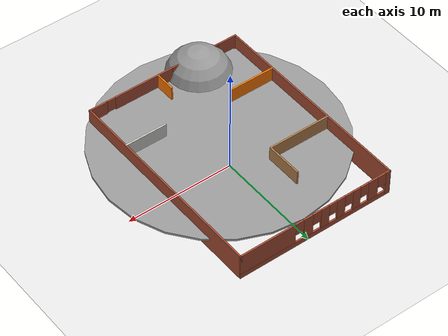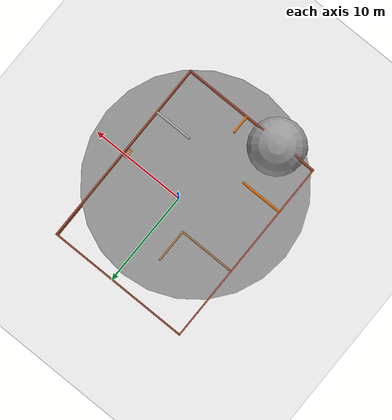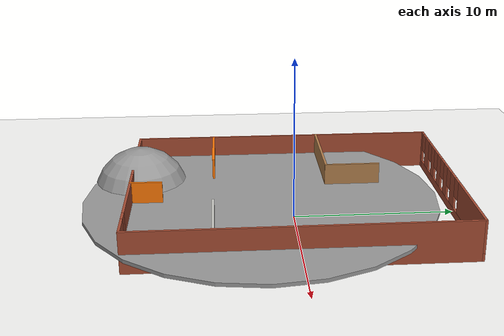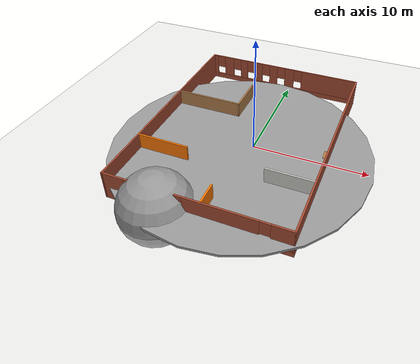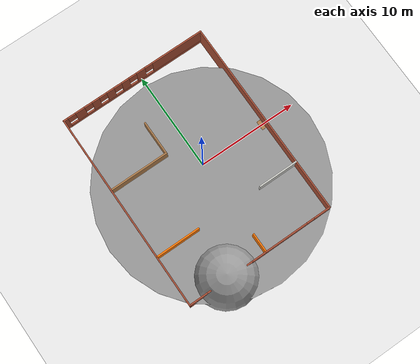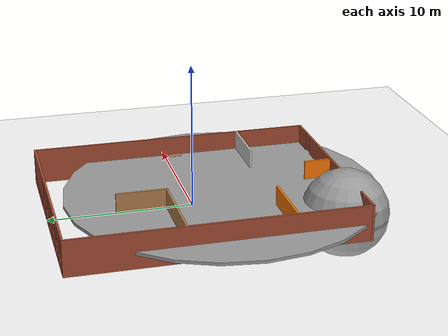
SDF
<sdf version="1.6">
 <world name="default">
  <model name="ground_plane">
   <static>1</static>
   <link name="link">
    <collision name="collision">
     <geometry><plane><normal>0 0 1</normal><size>100 100</size></plane></geometry>
     <surface>
      <contact><collide_bitmask>65535</collide_bitmask></contact>
      <friction><ode><mu>100</mu><mu2>50</mu2></ode></friction>
     </surface>
    </collision>
    <visual name="visual">
     <cast_shadows>0</cast_shadows>
     <geometry><plane><normal>0 0 1</normal><size>100 100</size></plane></geometry>
     <material>
      <script><uri>file://media/materials/scripts/gazebo.material</uri><name>Gazebo/Grey</name></script>
     </material>
    </visual>
   </link>
  </model>
  <model name="Apartment">
   <pose>-0.78403 0.000494 0 0 -0 0</pose>
   <link name="Wall_0">
    <collision name="Wall_0_Collision">
     <geometry><box><size>20 0.15 2.5</size></box></geometry>
     <pose>0 0 1.25 0 -0 0</pose>
    </collision>
    <visual name="Wall_0_Visual">
     <pose>0 0 1.25 0 -0 0</pose>
     <geometry><box><size>20 0.15 2.5</size></box></geometry>
     <material>
      <script><uri>file://media/materials/scripts/gazebo.material</uri><name>Gazebo/Bricks</name></script>
      <ambient>0.921569 0.807843 0.615686 1</ambient>
     </material>
     <meta><layer>0</layer></meta>
    </visual>
    <pose>-7.42433 0 0 0 -0 1.57073</pose>
   </link>
   <link name="Wall_22">
    <collision name="Wall_22_Collision">
     <geometry><box><size>4 0.15 2.5</size></box></geometry>
     <pose>0 0 1.25 0 -0 0</pose>
    </collision>
    <visual name="Wall_22_Visual">
     <pose>0 0 1.25 0 -0 0</pose>
     <geometry><box><size>4 0.15 2.5</size></box></geometry>
     <material>
      <script><uri>file://media/materials/scripts/gazebo.material</uri><name>Gazebo/CeilingTiled</name></script>
      <ambient>1 1 1 1</ambient>
     </material>
     <meta><layer>0</layer></meta>
    </visual>
    <pose>5.47445 -4.93437 0 0 -0 3.14159</pose>
   </link>
   <link name="Wall_24">
    <collision name="Wall_24_Collision">
     <geometry><box><size>2 0.15 2.5</size></box></geometry>
     <pose>0 0 1.25 0 -0 0</pose>
    </collision>
    <visual name="Wall_24_Visual">
     <pose>0 0 1.25 0 -0 0</pose>
     <geometry><box><size>2 0.15 2.5</size></box></geometry>
     <material>
      <script><uri>file://media/materials/scripts/gazebo.material</uri><name>Gazebo/Grey</name></script>
      <ambient>0.996078 0.47451 0.0196078 1</ambient>
     </material>
     <meta><layer>0</layer></meta>
    </visual>
    <pose>0.601066 -8.99753 0 0 -0 1.5708</pose>
   </link>
   <link name="Wall_26">
    <collision name="Wall_26_Collision">
     <geometry><box><size>4.5 0.15 2.5</size></box></geometry>
     <pose>0 0 1.25 0 -0 0</pose>
    </collision>
    <visual name="Wall_26_Visual">
     <pose>0 0 1.25 0 -0 0</pose>
     <geometry><box><size>4.5 0.15 2.5</size></box></geometry>
     <material>
      <script><uri>file://media/materials/scripts/gazebo.material</uri><name>Gazebo/Grey</name></script>
      <ambient>0.996078 0.47451 0.0196078 1</ambient>
     </material>
     <meta><layer>0</layer></meta>
    </visual>
    <pose>-5.22914 -4.89414 0 0 -0 0</pose>
   </link>
   <link name="Wall_29">
    <collision name="Wall_29_Collision">
     <geometry><box><size>6 0.15 2.5</size></box></geometry>
     <pose>0 0 1.25 0 -0 0</pose>
    </collision>
    <visual name="Wall_29_Visual">
     <pose>0 0 1.25 0 -0 0</pose>
     <geometry><box><size>6 0.15 2.5</size></box></geometry>
     <material>
      <script><uri>file://media/materials/scripts/gazebo.material</uri><name>Gazebo/Wood</name></script>
      <ambient>1 1 1 1</ambient>
     </material>
     <meta><layer>0</layer></meta>
    </visual>
    <pose>-4.49077 2.26536 0 0 -0 0</pose>
   </link>
   <link name="Wall_31">
    <collision name="Wall_31_Collision">
     <geometry><box><size>3.5 0.15 2.5</size></box></geometry>
     <pose>0 0 1.25 0 -0 0</pose>
    </collision>
    <visual name="Wall_31_Visual">
     <pose>0 0 1.25 0 -0 0</pose>
     <geometry><box><size>3.5 0.15 2.5</size></box></geometry>
     <material>
      <script><uri>file://media/materials/scripts/gazebo.material</uri><name>Gazebo/Wood</name></script>
      <ambient>1 1 1 1</ambient>
     </material>
     <meta><layer>0</layer></meta>
    </visual>
    <pose>-1.56577 3.94036 0 0 -0 1.5708</pose>
   </link>
   <link name="Wall_5">
    <pose>2e-06 -9.925 0 0 -0 0</pose>
    <visual name="Wall_5_Visual_0">
     <pose>-6.54582 0 1.25 0 -0 0</pose>
     <geometry><box><size>1.90835 0.15 2.5</size></box></geometry>
     <material>
      <script><uri>file://media/materials/scripts/gazebo.material</uri><name>Gazebo/Bricks</name></script>
      <ambient>1 1 1 1</ambient>
     </material>
     <meta><layer>0</layer></meta>
    </visual>
    <collision name="Wall_5_Collision_0">
     <geometry><box><size>1.90835 0.15 2.5</size></box></geometry>
     <pose>-6.54582 0 1.25 0 -0 0</pose>
    </collision>
    <visual name="Wall_5_Visual_1">
     <pose>2.05413 0 1.25 0 -0 0</pose>
     <geometry><box><size>5.78748 0.15 2.5</size></box></geometry>
     <material>
      <script><uri>file://media/materials/scripts/gazebo.material</uri><name>Gazebo/Bricks</name></script>
      <ambient>1 1 1 1</ambient>
     </material>
     <meta><layer>0</layer></meta>
    </visual>
    <collision name="Wall_5_Collision_1">
     <geometry><box><size>5.78748 0.15 2.5</size></box></geometry>
     <pose>2.05413 0 1.25 0 -0 0</pose>
    </collision>
    <visual name="Wall_5_Visual_2">
     <pose>-3.66563 0 0.25 0 -0 0</pose>
     <geometry><box><size>3.85203 0.15 0.5</size></box></geometry>
     <material>
      <script><uri>file://media/materials/scripts/gazebo.material</uri><name>Gazebo/Bricks</name></script>
      <ambient>1 1 1 1</ambient>
     </material>
     <meta><layer>0</layer></meta>
    </visual>
    <collision name="Wall_5_Collision_2">
     <geometry><box><size>3.85203 0.15 0.5</size></box></geometry>
     <pose>-3.66563 0 0.25 0 -0 0</pose>
    </collision>
    <visual name="Wall_5_Visual_3">
     <pose>6.22393 0 0.25 0 -0 0</pose>
     <geometry><box><size>2.55213 0.15 0.5</size></box></geometry>
     <material>
      <script><uri>file://media/materials/scripts/gazebo.material</uri><name>Gazebo/Bricks</name></script>
      <ambient>1 1 1 1</ambient>
     </material>
     <meta><layer>0</layer></meta>
    </visual>
    <collision name="Wall_5_Collision_3">
     <geometry><box><size>2.55213 0.15 0.5</size></box></geometry>
     <pose>6.22393 0 0.25 0 -0 0</pose>
    </collision>
    <visual name="Wall_5_Visual_4">
     <pose>-3.26563 0 1.5 0 -0 0</pose>
     <geometry><box><size>3.05203 0.15 2</size></box></geometry>
     <material>
      <script><uri>file://media/materials/scripts/gazebo.material</uri><name>Gazebo/Bricks</name></script>
      <ambient>1 1 1 1</ambient>
     </material>
     <meta><layer>0</layer></meta>
    </visual>
    <collision name="Wall_5_Collision_4">
     <geometry><box><size>3.05203 0.15 2</size></box></geometry>
     <pose>-3.26563 0 1.5 0 -0 0</pose>
    </collision>
    <visual name="Wall_5_Visual_5">
     <pose>-3.26563 0 1.5 0 -0 0</pose>
     <geometry><box><size>3.05203 0.15 2</size></box></geometry>
     <material>
      <script><uri>file://media/materials/scripts/gazebo.material</uri><name>Gazebo/Bricks</name></script>
      <ambient>1 1 1 1</ambient>
     </material>
     <meta><layer>0</layer></meta>
    </visual>
    <collision name="Wall_5_Collision_5">
     <geometry><box><size>3.05203 0.15 2</size></box></geometry>
     <pose>-3.26563 0 1.5 0 -0 0</pose>
    </collision>
    <visual name="Wall_5_Visual_6">
     <pose>6.62393 0 1.5 0 -0 0</pose>
     <geometry><box><size>1.75213 0.15 2</size></box></geometry>
     <material>
      <script><uri>file://media/materials/scripts/gazebo.material</uri><name>Gazebo/Bricks</name></script>
      <ambient>1 1 1 1</ambient>
     </material>
     <meta><layer>0</layer></meta>
    </visual>
    <collision name="Wall_5_Collision_6">
     <geometry><box><size>1.75213 0.15 2</size></box></geometry>
     <pose>6.62393 0 1.5 0 -0 0</pose>
    </collision>
    <visual name="Wall_5_Visual_7">
     <pose>-5.19165 0 1.9 0 -0 0</pose>
     <geometry><box><size>0.8 0.15 1.2</size></box></geometry>
     <material>
      <script><uri>file://media/materials/scripts/gazebo.material</uri><name>Gazebo/Bricks</name></script>
      <ambient>1 1 1 1</ambient>
     </material>
     <meta><layer>0</layer></meta>
    </visual>
    <collision name="Wall_5_Collision_7">
     <geometry><box><size>0.8 0.15 1.2</size></box></geometry>
     <pose>-5.19165 0 1.9 0 -0 0</pose>
    </collision>
    <visual name="Wall_5_Visual_8">
     <pose>5.34787 0 1.9 0 -0 0</pose>
     <geometry><box><size>0.8 0.15 1.2</size></box></geometry>
     <material>
      <script><uri>file://media/materials/scripts/gazebo.material</uri><name>Gazebo/Bricks</name></script>
      <ambient>1 1 1 1</ambient>
     </material>
     <meta><layer>0</layer></meta>
    </visual>
    <collision name="Wall_5_Collision_8">
     <geometry><box><size>0.8 0.15 1.2</size></box></geometry>
     <pose>5.34787 0 1.9 0 -0 0</pose>
    </collision>
    <visual name="Wall_5_Visual_9">
     <pose>-1.28961 0 2.25 0 -0 0</pose>
     <geometry><box><size>0.9 0.15 0.5</size></box></geometry>
     <material>
      <script><uri>file://media/materials/scripts/gazebo.material</uri><name>Gazebo/Bricks</name></script>
      <ambient>1 1 1 1</ambient>
     </material>
     <meta><layer>0</layer></meta>
    </visual>
    <collision name="Wall_5_Collision_9">
     <geometry><box><size>0.9 0.15 0.5</size></box></geometry>
     <pose>-1.28961 0 2.25 0 -0 0</pose>
    </collision>
    <visual name="Wall_5_Visual_10">
     <pose>-1.28961 0 2.25 0 -0 0</pose>
     <geometry><box><size>0.9 0.15 0.5</size></box></geometry>
     <material>
      <script><uri>file://media/materials/scripts/gazebo.material</uri><name>Gazebo/Bricks</name></script>
      <ambient>1 1 1 1</ambient>
     </material>
     <meta><layer>0</layer></meta>
    </visual>
    <collision name="Wall_5_Collision_10">
     <geometry><box><size>0.9 0.15 0.5</size></box></geometry>
     <pose>-1.28961 0 2.25 0 -0 0</pose>
    </collision>
   </link>
   <link name="Wall_7">
    <collision name="Wall_7_Collision">
     <geometry><box><size>20 0.15 2.5</size></box></geometry>
     <pose>0 0 1.25 0 -0 0</pose>
    </collision>
    <visual name="Wall_7_Visual">
     <pose>0 0 1.25 0 -0 0</pose>
     <geometry><box><size>20 0.15 2.5</size></box></geometry>
     <material>
      <script><uri>file://media/materials/scripts/gazebo.material</uri><name>Gazebo/Bricks</name></script>
      <ambient>1 1 1 1</ambient>
     </material>
     <meta><layer>0</layer></meta>
    </visual>
    <pose>7.425 0 0 0 -0 1.5708</pose>
   </link>
   <link name="Wall_9">
    <pose>0.00067 9.925 0 0 -0 0</pose>
    <visual name="Wall_9_Visual_0">
     <pose>-7.2498 0 1.25 0 -0 0</pose>
     <geometry><box><size>0.499068 0.15 2.5</size></box></geometry>
     <material>
      <script><uri>file://media/materials/scripts/gazebo.material</uri><name>Gazebo/Bricks</name></script>
      <ambient>0.921569 0.807843 0.615686 1</ambient>
     </material>
     <meta><layer>0</layer></meta>
    </visual>
    <collision name="Wall_9_Collision_0">
     <geometry><box><size>0.499068 0.15 2.5</size></box></geometry>
     <pose>-7.2498 0 1.25 0 -0 0</pose>
    </collision>
    <visual name="Wall_9_Visual_1">
     <pose>0.249534 0 0.25 0 -0 0</pose>
     <geometry><box><size>14.4996 0.15 0.5</size></box></geometry>
     <material>
      <script><uri>file://media/materials/scripts/gazebo.material</uri><name>Gazebo/Bricks</name></script>
      <ambient>0.921569 0.807843 0.615686 1</ambient>
     </material>
     <meta><layer>0</layer></meta>
    </visual>
    <collision name="Wall_9_Collision_1">
     <geometry><box><size>14.4996 0.15 0.5</size></box></geometry>
     <pose>0.249534 0 0.25 0 -0 0</pose>
    </collision>
    <visual name="Wall_9_Visual_2">
     <pose>-5.71527 0 1.5 0 -0 0</pose>
     <geometry><box><size>0.969994 0.15 2</size></box></geometry>
     <material>
      <script><uri>file://media/materials/scripts/gazebo.material</uri><name>Gazebo/Bricks</name></script>
      <ambient>0.921569 0.807843 0.615686 1</ambient>
     </material>
     <meta><layer>0</layer></meta>
    </visual>
    <collision name="Wall_9_Collision_2">
     <geometry><box><size>0.969994 0.15 2</size></box></geometry>
     <pose>-5.71527 0 1.5 0 -0 0</pose>
    </collision>
    <visual name="Wall_9_Visual_3">
     <pose>-4.04584 0 1.5 0 -0 0</pose>
     <geometry><box><size>0.768859 0.15 2</size></box></geometry>
     <material>
      <script><uri>file://media/materials/scripts/gazebo.material</uri><name>Gazebo/Bricks</name></script>
      <ambient>0.921569 0.807843 0.615686 1</ambient>
     </material>
     <meta><layer>0</layer></meta>
    </visual>
    <collision name="Wall_9_Collision_3">
     <geometry><box><size>0.768859 0.15 2</size></box></geometry>
     <pose>-4.04584 0 1.5 0 -0 0</pose>
    </collision>
    <visual name="Wall_9_Visual_4">
     <pose>-2.45687 0 1.5 0 -0 0</pose>
     <geometry><box><size>0.809085 0.15 2</size></box></geometry>
     <material>
      <script><uri>file://media/materials/scripts/gazebo.material</uri><name>Gazebo/Bricks</name></script>
      <ambient>0.921569 0.807843 0.615686 1</ambient>
     </material>
     <meta><layer>0</layer></meta>
    </visual>
    <collision name="Wall_9_Collision_4">
     <geometry><box><size>0.809085 0.15 2</size></box></geometry>
     <pose>-2.45687 0 1.5 0 -0 0</pose>
    </collision>
    <visual name="Wall_9_Visual_5">
     <pose>-0.847783 0 1.5 0 -0 0</pose>
     <geometry><box><size>0.809086 0.15 2</size></box></geometry>
     <material>
      <script><uri>file://media/materials/scripts/gazebo.material</uri><name>Gazebo/Bricks</name></script>
      <ambient>0.921569 0.807843 0.615686 1</ambient>
     </material>
     <meta><layer>0</layer></meta>
    </visual>
    <collision name="Wall_9_Collision_5">
     <geometry><box><size>0.809086 0.15 2</size></box></geometry>
     <pose>-0.847783 0 1.5 0 -0 0</pose>
    </collision>
    <visual name="Wall_9_Visual_6">
     <pose>0.821644 0 1.5 0 -0 0</pose>
     <geometry><box><size>0.929767 0.15 2</size></box></geometry>
     <material>
      <script><uri>file://media/materials/scripts/gazebo.material</uri><name>Gazebo/Bricks</name></script>
      <ambient>0.921569 0.807843 0.615686 1</ambient>
     </material>
     <meta><layer>0</layer></meta>
    </visual>
    <collision name="Wall_9_Collision_6">
     <geometry><box><size>0.929767 0.15 2</size></box></geometry>
     <pose>0.821644 0 1.5 0 -0 0</pose>
    </collision>
    <visual name="Wall_9_Visual_7">
     <pose>4.79293 0 1.5 0 -0 0</pose>
     <geometry><box><size>5.4128 0.15 2</size></box></geometry>
     <material>
      <script><uri>file://media/materials/scripts/gazebo.material</uri><name>Gazebo/Bricks</name></script>
      <ambient>0.921569 0.807843 0.615686 1</ambient>
     </material>
     <meta><layer>0</layer></meta>
    </visual>
    <collision name="Wall_9_Collision_7">
     <geometry><box><size>5.4128 0.15 2</size></box></geometry>
     <pose>4.79293 0 1.5 0 -0 0</pose>
    </collision>
    <visual name="Wall_9_Visual_8">
     <pose>-6.60026 0 1.9 0 -0 0</pose>
     <geometry><box><size>0.8 0.15 1.2</size></box></geometry>
     <material>
      <script><uri>file://media/materials/scripts/gazebo.material</uri><name>Gazebo/Bricks</name></script>
      <ambient>0.921569 0.807843 0.615686 1</ambient>
     </material>
     <meta><layer>0</layer></meta>
    </visual>
    <collision name="Wall_9_Collision_8">
     <geometry><box><size>0.8 0.15 1.2</size></box></geometry>
     <pose>-6.60026 0 1.9 0 -0 0</pose>
    </collision>
    <visual name="Wall_9_Visual_9">
     <pose>-4.83027 0 1.9 0 -0 0</pose>
     <geometry><box><size>0.8 0.15 1.2</size></box></geometry>
     <material>
      <script><uri>file://media/materials/scripts/gazebo.material</uri><name>Gazebo/Bricks</name></script>
      <ambient>0.921569 0.807843 0.615686 1</ambient>
     </material>
     <meta><layer>0</layer></meta>
    </visual>
    <collision name="Wall_9_Collision_9">
     <geometry><box><size>0.8 0.15 1.2</size></box></geometry>
     <pose>-4.83027 0 1.9 0 -0 0</pose>
    </collision>
    <visual name="Wall_9_Visual_10">
     <pose>-3.26141 0 1.9 0 -0 0</pose>
     <geometry><box><size>0.8 0.15 1.2</size></box></geometry>
     <material>
      <script><uri>file://media/materials/scripts/gazebo.material</uri><name>Gazebo/Bricks</name></script>
      <ambient>0.921569 0.807843 0.615686 1</ambient>
     </material>
     <meta><layer>0</layer></meta>
    </visual>
    <collision name="Wall_9_Collision_10">
     <geometry><box><size>0.8 0.15 1.2</size></box></geometry>
     <pose>-3.26141 0 1.9 0 -0 0</pose>
    </collision>
    <visual name="Wall_9_Visual_11">
     <pose>-1.65233 0 1.9 0 -0 0</pose>
     <geometry><box><size>0.8 0.15 1.2</size></box></geometry>
     <material>
      <script><uri>file://media/materials/scripts/gazebo.material</uri><name>Gazebo/Bricks</name></script>
      <ambient>0.921569 0.807843 0.615686 1</ambient>
     </material>
     <meta><layer>0</layer></meta>
    </visual>
    <collision name="Wall_9_Collision_11">
     <geometry><box><size>0.8 0.15 1.2</size></box></geometry>
     <pose>-1.65233 0 1.9 0 -0 0</pose>
    </collision>
    <visual name="Wall_9_Visual_12">
     <pose>-0.04324 0 1.9 0 -0 0</pose>
     <geometry><box><size>0.8 0.15 1.2</size></box></geometry>
     <material>
      <script><uri>file://media/materials/scripts/gazebo.material</uri><name>Gazebo/Bricks</name></script>
      <ambient>0.921569 0.807843 0.615686 1</ambient>
     </material>
     <meta><layer>0</layer></meta>
    </visual>
    <collision name="Wall_9_Collision_12">
     <geometry><box><size>0.8 0.15 1.2</size></box></geometry>
     <pose>-0.04324 0 1.9 0 -0 0</pose>
    </collision>
    <visual name="Wall_9_Visual_13">
     <pose>1.68653 0 1.9 0 -0 0</pose>
     <geometry><box><size>0.8 0.15 1.2</size></box></geometry>
     <material>
      <script><uri>file://media/materials/scripts/gazebo.material</uri><name>Gazebo/Bricks</name></script>
      <ambient>0.921569 0.807843 0.615686 1</ambient>
     </material>
     <meta><layer>0</layer></meta>
    </visual>
    <collision name="Wall_9_Collision_13">
     <geometry><box><size>0.8 0.15 1.2</size></box></geometry>
     <pose>1.68653 0 1.9 0 -0 0</pose>
    </collision>
   </link>
   <static>1</static>
  </model>
  <model name="bookshelf">
   <static>1</static>
   <link name="link">
    <inertial><mass>1</mass></inertial>
    <collision name="back">
     <pose>0 0.005 0.6 0 -0 0</pose>
     <geometry><box><size>0.9 0.01 1.2</size></box></geometry>
    </collision>
    <visual name="visual1">
     <pose>0 0.005 0.6 0 -0 0</pose>
     <geometry><box><size>0.9 0.01 1.2</size></box></geometry>
     <material>
      <script><uri>file://media/materials/scripts/gazebo.material</uri><name>Gazebo/Wood</name></script>
     </material>
    </visual>
    <collision name="left_side">
     <pose>0.45 -0.195 0.6 0 -0 0</pose>
     <geometry><box><size>0.02 0.4 1.2</size></box></geometry>
    </collision>
    <visual name="visual2">
     <pose>0.45 -0.195 0.6 0 -0 0</pose>
     <geometry><box><size>0.02 0.4 1.2</size></box></geometry>
     <material>
      <script><uri>file://media/materials/scripts/gazebo.material</uri><name>Gazebo/Wood</name></script>
     </material>
    </visual>
    <collision name="right_side">
     <pose>-0.45 -0.195 0.6 0 -0 0</pose>
     <geometry><box><size>0.02 0.4 1.2</size></box></geometry>
    </collision>
    <visual name="visual3">
     <pose>-0.45 -0.195 0.6 0 -0 0</pose>
     <geometry><box><size>0.02 0.4 1.2</size></box></geometry>
     <material>
      <script><uri>file://media/materials/scripts/gazebo.material</uri><name>Gazebo/Wood</name></script>
     </material>
    </visual>
    <collision name="bottom">
     <pose>0 -0.195 0.03 0 -0 0</pose>
     <geometry><box><size>0.88 0.4 0.06</size></box></geometry>
    </collision>
    <visual name="visual4">
     <pose>0 -0.195 0.03 0 -0 0</pose>
     <geometry><box><size>0.88 0.4 0.06</size></box></geometry>
     <material>
      <script><uri>file://media/materials/scripts/gazebo.material</uri><name>Gazebo/Wood</name></script>
     </material>
    </visual>
    <collision name="top">
     <pose>0 -0.195 1.19 0 -0 0</pose>
     <geometry><box><size>0.88 0.4 0.02</size></box></geometry>
    </collision>
    <visual name="visual5">
     <pose>0 -0.195 1.19 0 -0 0</pose>
     <geometry><box><size>0.88 0.4 0.02</size></box></geometry>
     <material>
      <script><uri>file://media/materials/scripts/gazebo.material</uri><name>Gazebo/Wood</name></script>
     </material>
    </visual>
    <collision name="low_shelf">
     <pose>0 -0.195 0.43 0 -0 0</pose>
     <geometry><box><size>0.88 0.4 0.02</size></box></geometry>
    </collision>
    <visual name="visual6">
     <pose>0 -0.195 0.43 0 -0 0</pose>
     <geometry><box><size>0.88 0.4 0.02</size></box></geometry>
     <material>
      <script><uri>file://media/materials/scripts/gazebo.material</uri><name>Gazebo/Wood</name></script>
     </material>
    </visual>
    <collision name="high_shelf">
     <pose>0 -0.195 0.8 0 -0 0</pose>
     <geometry><box><size>0.88 0.4 0.02</size></box></geometry>
    </collision>
    <visual name="visual7">
     <pose>0 -0.195 0.8 0 -0 0</pose>
     <geometry><box><size>0.88 0.4 0.02</size></box></geometry>
     <material>
      <script><uri>file://media/materials/scripts/gazebo.material</uri><name>Gazebo/Wood</name></script>
     </material>
    </visual>
   </link>
   <pose>6.53271 -0.197414 0 0 0 -1.55123</pose>
  </model>
  <model name="table_0">
   <static>1</static>
   <link name="link">
    <collision name="surface">
     <pose>0 0 1 0 -0 0</pose>
     <geometry><box><size>1.5 0.8 0.03</size></box></geometry>
     <surface><friction><ode><mu>0.6</mu><mu2>0.6</mu2></ode></friction></surface>
    </collision>
    <visual name="visual1">
     <pose>0 0 1 0 -0 0</pose>
     <geometry><box><size>1.5 0.8 0.03</size></box></geometry>
     <material>
      <script><uri>file://media/materials/scripts/gazebo.material</uri><name>Gazebo/Wood</name></script>
     </material>
    </visual>
    <collision name="front_left_leg">
     <pose>0.68 0.38 0.5 0 -0 0</pose>
     <geometry><cylinder><radius>0.02</radius><length>1</length></cylinder></geometry>
    </collision>
    <visual name="front_left_leg">
     <pose>0.68 0.38 0.5 0 -0 0</pose>
     <geometry><cylinder><radius>0.02</radius><length>1</length></cylinder></geometry>
     <material>
      <script><uri>file://media/materials/scripts/gazebo.material</uri><name>Gazebo/Grey</name></script>
     </material>
    </visual>
    <collision name="front_right_leg">
     <pose>0.68 -0.38 0.5 0 -0 0</pose>
     <geometry><cylinder><radius>0.02</radius><length>1</length></cylinder></geometry>
    </collision>
    <visual name="front_right_leg">
     <pose>0.68 -0.38 0.5 0 -0 0</pose>
     <geometry><cylinder><radius>0.02</radius><length>1</length></cylinder></geometry>
     <material>
      <script><uri>file://media/materials/scripts/gazebo.material</uri><name>Gazebo/Grey</name></script>
     </material>
    </visual>
    <collision name="back_right_leg">
     <pose>-0.68 -0.38 0.5 0 -0 0</pose>
     <geometry><cylinder><radius>0.02</radius><length>1</length></cylinder></geometry>
    </collision>
    <visual name="back_right_leg">
     <pose>-0.68 -0.38 0.5 0 -0 0</pose>
     <geometry><cylinder><radius>0.02</radius><length>1</length></cylinder></geometry>
     <material>
      <script><uri>file://media/materials/scripts/gazebo.material</uri><name>Gazebo/Grey</name></script>
     </material>
    </visual>
    <collision name="back_left_leg">
     <pose>-0.68 0.38 0.5 0 -0 0</pose>
     <geometry><cylinder><radius>0.02</radius><length>1</length></cylinder></geometry>
    </collision>
    <visual name="back_left_leg">
     <pose>-0.68 0.38 0.5 0 -0 0</pose>
     <geometry><cylinder><radius>0.02</radius><length>1</length></cylinder></geometry>
     <material>
      <script><uri>file://media/materials/scripts/gazebo.material</uri><name>Gazebo/Grey</name></script>
     </material>
    </visual>
   </link>
   <pose>2.21123 4.71605 0 0 -0 0</pose>
  </model>
  <model name="unit_cylinder">
   <pose>-0.433972 -1.98572 1.06753 0 0 -0.002194</pose>
   <link name="link">
    <inertial>
     <mass>1</mass>
     <inertia><ixx>0.145833</ixx><ixy>0</ixy><ixz>0</ixz><iyy>0.145833</iyy><iyz>0</iyz><izz>0.125</izz></inertia>
    </inertial>
    <collision name="collision">
     <geometry><cylinder><radius>10.8978</radius><length>0.21937</length></cylinder></geometry>
    </collision>
    <visual name="visual">
     <geometry><cylinder><radius>10.8978</radius><length>0.21937</length></cylinder></geometry>
     <material>
      <script><name>Gazebo/Grey</name><uri>file://media/materials/scripts/gazebo.material</uri></script>
     </material>
    </visual>
   </link>
  </model>
  <model name="unit_sphere">
   <pose>-4.1205 -9.60035 0.203409 0 -0 0</pose>
   <link name="link">
    <inertial>
     <mass>1</mass>
     <inertia><ixx>0.1</ixx><ixy>0</ixy><ixz>0</ixz><iyy>0.1</iyy><iyz>0</iyz><izz>0.1</izz></inertia>
    </inertial>
    <collision name="collision"><geometry><sphere><radius>3.02112</radius></sphere></geometry></collision>
    <visual name="visual">
     <geometry><sphere><radius>3.02112</radius></sphere></geometry>
     <material>
      <script><name>Gazebo/Grey</name><uri>file://media/materials/scripts/gazebo.material</uri></script>
     </material>
    </visual>
   </link>
  </model>
 </world>
</sdf>
